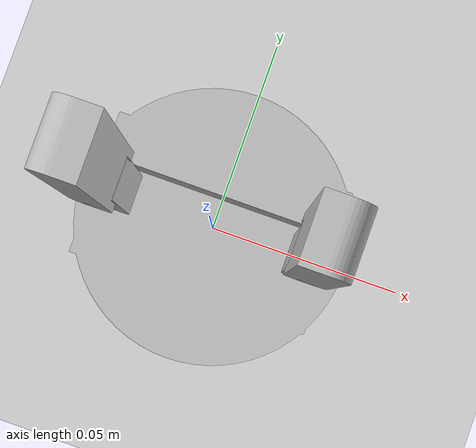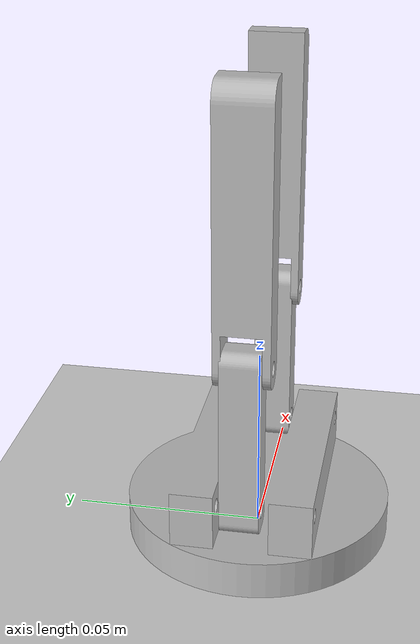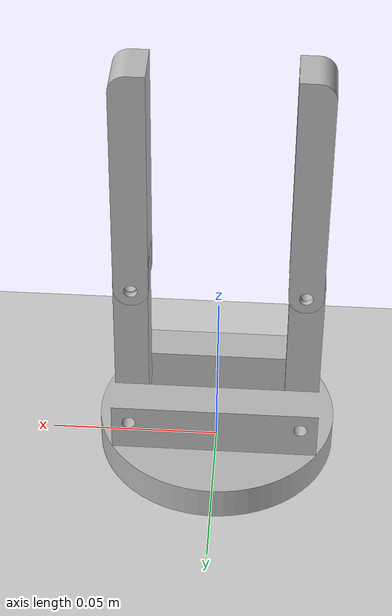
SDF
<?xml version="1.0" ?>
<sdf version="1.4">
  <world name="default">
    <include>
      <uri>model://ground_plane</uri>
    </include>

    <include>
      <uri>model://sun</uri>
    </include>

    <include>
      <uri>model://edo_gripper</uri>
      <pose>0 0 0 1.57079632679 0 0</pose>
    </include>

  </world>
</sdf>

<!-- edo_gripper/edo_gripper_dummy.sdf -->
<sdf version='1.6'>
  <model name='edo_gripper'>
    <static>false</static>
    <link name='base_link'>
      <pose frame=''>0 0 0 0 -0 0</pose>
      <inertial>
        <pose frame=''>0 0 0 0 -0 0</pose>
        <mass>0.05</mass>
        <inertia>
          <ixx>1</ixx>
          <ixy>0</ixy>
          <ixz>0</ixz>
          <iyy>1</iyy>
          <iyz>0</iyz>
          <izz>1</izz>
        </inertia>
      </inertial>
      <collision name='base_link_collision'>
        <pose frame=''>-0.035 0 -0.035 0 -0 0</pose>
        <geometry>
          <mesh>
            <scale>1 1 1</scale>
            <uri>model://edo_gripper/meshes/base.STL</uri>
          </mesh>
        </geometry>
      </collision>
      <visual name='base_link_visual'>
        <pose frame=''>-0.035 0 -0.035 0 -0 0</pose>
        <geometry>
          <mesh>
            <scale>1 1 1</scale>
            <uri>model://edo_gripper/meshes/base.STL</uri>
          </mesh>
        </geometry>
      </visual>
    </link>
    <link name='link_finger_base_left'>
      <pose frame=''>0.025 0.0195 0 0 -0 0</pose>
      <inertial>
        <pose frame=''>0 0 0 0 -0 0</pose>
        <mass>0.005</mass>
        <inertia>
          <ixx>1</ixx>
          <ixy>0</ixy>
          <ixz>0</ixz>
          <iyy>1</iyy>
          <iyz>0</iyz>
          <izz>1</izz>
        </inertia>
      </inertial>
      <collision name='link_finger_base_left_collision'>
        <pose frame=''>-0.005 0 -0.04 0 -0 0</pose>
        <geometry>
          <mesh>
            <scale>1 1 1</scale>
            <uri>model://edo_gripper/meshes/finger_base.STL</uri>
          </mesh>
        </geometry>
      </collision>
      <visual name='link_finger_base_left_visual'>
        <pose frame=''>-0.005 0 -0.04 0 -0 0</pose>
        <geometry>
          <mesh>
            <scale>1 1 1</scale>
            <uri>model://edo_gripper/meshes/finger_base.STL</uri>
          </mesh>
        </geometry>
      </visual>
    </link>
    <joint name='joint_base_left' type='revolute'>
      <child>link_finger_base_left</child>
      <parent>base_link</parent>
      <axis>
        <xyz>0 0 1</xyz>
        <limit>
          <lower>-1.5708</lower>
          <upper>1.5708</upper>
          <effort>100</effort>
          <velocity>100</velocity>
        </limit>
        <dynamics>
          <spring_reference>0</spring_reference>
          <spring_stiffness>0</spring_stiffness>
        </dynamics>
        <use_parent_model_frame>1</use_parent_model_frame>
      </axis>
    </joint>
    <link name='link_finger_tip_left'>
      <pose frame=''>0.025 0.0595 0 0 -0 0</pose>
      <inertial>
        <pose frame=''>0 0 0 0 -0 0</pose>
        <mass>0.005</mass>
        <inertia>
          <ixx>1</ixx>
          <ixy>0</ixy>
          <ixz>0</ixz>
          <iyy>1</iyy>
          <iyz>0</iyz>
          <izz>1</izz>
        </inertia>
      </inertial>
      <collision name='link_finger_tip_left_collision'>
        <pose frame=''>-0.071 0 0 0 -0 0</pose>
        <geometry>
          <mesh>
            <scale>1 1 1</scale>
            <uri>model://edo_gripper/meshes/finger_tip.STL</uri>
          </mesh>
        </geometry>
      </collision>
      <visual name='link_finger_tip_left_visual'>
        <pose frame=''>-0.071 0 0 0 -0 0</pose>
        <geometry>
          <mesh>
            <scale>1 1 1</scale>
            <uri>model://edo_gripper/meshes/finger_tip.STL</uri>
          </mesh>
        </geometry>
      </visual>
    </link>
    <joint name='joint_finger_left' type='revolute'>
      <child>link_finger_tip_left</child>
      <parent>link_finger_base_left</parent>
      <axis>
        <xyz>0 0 1</xyz>
        <limit>
          <lower>-1.5708</lower>
          <upper>1.5708</upper>
          <effort>100</effort>
          <velocity>100</velocity>
        </limit>
        <dynamics>
          <spring_reference>0</spring_reference>
          <spring_stiffness>0</spring_stiffness>
        </dynamics>
        <use_parent_model_frame>1</use_parent_model_frame>
      </axis>
    </joint>
    <link name='link_finger_base_right'>
      <pose frame=''>-0.025 0.0195 0 3.14159 0 3.14159</pose>
      <inertial>
        <pose frame=''>0 0 0 0 -0 0</pose>
        <mass>0.005</mass>
        <inertia>
          <ixx>1</ixx>
          <ixy>0</ixy>
          <ixz>0</ixz>
          <iyy>1</iyy>
          <iyz>0</iyz>
          <izz>1</izz>
        </inertia>
      </inertial>
      <collision name='link_finger_base_right_collision'>
        <pose frame=''>-0.005 0 -0.04 0 -0 0</pose>
        <geometry>
          <mesh>
            <scale>1 1 1</scale>
            <uri>model://edo_gripper/meshes/finger_base.STL</uri>
          </mesh>
        </geometry>
      </collision>
      <visual name='link_finger_base_right_visual'>
        <pose frame=''>-0.005 0 -0.04 0 -0 0</pose>
        <geometry>
          <mesh>
            <scale>1 1 1</scale>
            <uri>model://edo_gripper/meshes/finger_base.STL</uri>
          </mesh>
        </geometry>
      </visual>
    </link>
    <joint name='joint_base_right' type='revolute'>
      <child>link_finger_base_right</child>
      <parent>base_link</parent>
      <axis>
        <xyz>0 0 -1</xyz>
        <limit>
          <lower>-1.5708</lower>
          <upper>1.5708</upper>
          <effort>100</effort>
          <velocity>100</velocity>
        </limit>
        <dynamics>
          <spring_reference>0</spring_reference>
          <spring_stiffness>0</spring_stiffness>
        </dynamics>
        <use_parent_model_frame>1</use_parent_model_frame>
      </axis>
    </joint>
    <link name='link_finger_tip_right'>
      <pose frame=''>-0.025 0.0595 0 3.14159 0 3.14159</pose>
      <inertial>
        <pose frame=''>0 0 0 0 -0 0</pose>
        <mass>0.005</mass>
        <inertia>
          <ixx>1</ixx>
          <ixy>0</ixy>
          <ixz>0</ixz>
          <iyy>1</iyy>
          <iyz>0</iyz>
          <izz>1</izz>
        </inertia>
      </inertial>
      <collision name='link_finger_tip_right_collision'>
        <pose frame=''>-0.071 0 0 0 -0 0</pose>
        <geometry>
          <mesh>
            <scale>1 1 1</scale>
            <uri>model://edo_gripper/meshes/finger_tip.STL</uri>
          </mesh>
        </geometry>
      </collision>
      <visual name='link_finger_tip_right_visual'>
        <pose frame=''>-0.071 0 0 0 -0 0</pose>
        <geometry>
          <mesh>
            <scale>1 1 1</scale>
            <uri>model://edo_gripper/meshes/finger_tip.STL</uri>
          </mesh>
        </geometry>
      </visual>
    </link>
    <joint name='joint_finger_right' type='revolute'>
      <child>link_finger_tip_right</child>
      <parent>link_finger_base_right</parent>
      <axis>
        <xyz>0 0 -1</xyz>
        <limit>
          <lower>-1.5708</lower>
          <upper>1.5708</upper>
          <effort>100</effort>
          <velocity>100</velocity>
        </limit>
        <dynamics>
          <spring_reference>0</spring_reference>
          <spring_stiffness>0</spring_stiffness>
        </dynamics>
        <use_parent_model_frame>1</use_parent_model_frame>
      </axis>
    </joint>

    <plugin name="edo_gripper" filename="libedo_gripper.so"/>
  </model>
</sdf>
